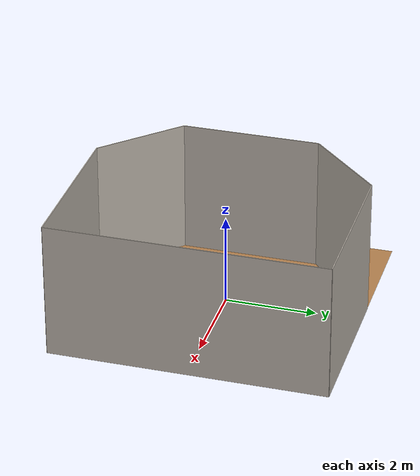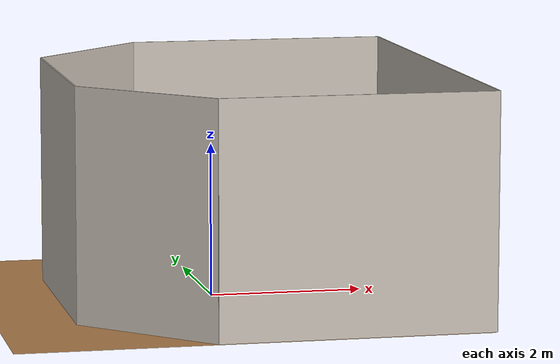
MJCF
<mujoco model="cabinet_arena">

  <asset>
    <texture builtin="gradient" height="256" rgb1=".9 .9 1." rgb2=".2 .3 .4" type="skybox" width="256"/>
    <texture file="../textures/wood-tiles.png" type="2d" name="texplane"/>
    <material name="floorplane" reflectance="0.01" shininess="0.0" specular="0.0" texrepeat="2 2" texture="texplane" texuniform="true"/>
    <!-- ceramic table texture and material-->
    <texture file="../textures/ceramic.png" type="cube" name="tex-ceramic"/>
    <material name="table_ceramic" reflectance="0.0" shininess="0.0" specular="0.2" texrepeat="1 1" texture="tex-ceramic" />
    <!-- steel legs -->
    <texture file="../textures/steel-brushed.png" type="cube" name="tex-steel-brushed"/>
    <material name="table_legs_metal" reflectance="0.8" shininess="0.8" texrepeat="1 1" texture="tex-steel-brushed" rgba="1 1 1 0.3"/>
    <material name="table_legs_metal2" reflectance="0.8" shininess="0.8" texrepeat="1 1" texture="tex-steel-brushed" rgba="1 1 1 0.3"/>

    <!-- plaster walls -->
    <texture file="../textures/cream-plaster.png" type="2d" name="tex-cream-plaster"/>
    <material name="walls_mat" reflectance="0.0" shininess="0.1" specular="0.1" texrepeat="3 3" texture="tex-cream-plaster" texuniform="true" />
    <!-- added table texture and material for domain randomization -->
    <texture  name="textable" builtin="flat" height="512" width="512" rgb1="0.5 0.5 0.5" rgb2="0.5 0.5 0.5"/>
    <material name="table_mat" texture="textable" />

    <mesh name="cabinet" file="meshes/kitchen_cabinet.stl" />

  </asset>
  <worldbody>
    <!-- Floor -->
    <geom condim="3" material="floorplane" name="floor" pos="0 0 0" size="3 3 .125" type="plane"/>
    <!-- Walls (visual only) -->
    <geom pos="-1.25 2.25 1.5" quat="0.6532815 0.6532815 0.2705981 0.2705981" size="1.06 1.5 0.01" type="box" conaffinity="0" contype="0" group="1" name="wall_leftcorner_visual" material="walls_mat"/>
    <geom pos="-1.25 -2.25 1.5" quat="0.6532815 0.6532815 -0.2705981 -0.2705981" size="1.06 1.5 0.01" type="box" conaffinity="0" contype="0" group="1" name="wall_rightcorner_visual" material="walls_mat"/>
    <geom pos="1.25 3 1.5" quat="0.7071 0.7071 0 0" size="1.75 1.5 0.01" type="box" conaffinity="0" contype="0" group="1" name="wall_left_visual" material="walls_mat"/>
    <geom pos="1.25 -3 1.5" quat="0.7071 -0.7071 0 0" size="1.75 1.5 0.01" type="box" conaffinity="0" contype="0" group="1" name="wall_right_visual" material="walls_mat"/>
    <geom pos="-2 0 1.5" quat="0.5 0.5 0.5 0.5" size="1.5 1.5 0.01" type="box" conaffinity="0" contype="0" group="1" name="wall_rear_visual" material="walls_mat"/>
    <geom pos="3 0 1.5" quat="0.5 0.5 -0.5 -0.5" size="3 1.5 0.01" type="box" conaffinity="0" contype="0" group="1" name="wall_front_visual" material="walls_mat"/>
    <!-- Table body -->
    <body name="table" pos="0 0 0.4">
      <geom pos="0 0 0" size="0.4 0.4 0.4" type="box" group="0" name="table_collision" solimp="0.9 0.95 0.001 0.5 2" solmix="10000" solref="0.001 2" priority="1"/>
      <geom pos="0 0 0" size="0.4 0.4 0.4" type="box" conaffinity="0" contype="0" group="1" name="table_visual" material="table_legs_metal"/>

      <!-- drawer used to be 0.14 in y -->
      <!-- drawer Sides (visual only) -->
      <geom pos="0.0 0.14 0.13" size="0.2 0.01 0.11" type="box" conaffinity="0" contype="0" group="1" name="drawer_visual" material="table_legs_metal2" priority="1"/>
      <geom pos="0.0 -0.14 0.13" size="0.2 0.01 0.11" type="box" conaffinity="0" contype="0" group="1" name="drawer_visual1" material="table_legs_metal" priority="1"/>
      <!-- drawer Back (visual only) -->
      <geom pos="0.19 0 0.13" size="0.01 0.14 0.11" type="box" conaffinity="0" contype="0" group="1" name="drawer_visual3" material="table_legs_metal" priority="1"/>
      <!-- drawer Front (visual only) -->
      <geom pos="-0.19 0 0.13" size="0.01 0.14 0.11" type="box" conaffinity="0" contype="0" group="1" name="drawer_visual4" material="table_legs_metal" priority="1"/>

      <!-- Cabinet Top (visual only) -->
       <!-- Cabinet Sides (visual only) -->
       <!-- Cabinet Back (visual only) -->
      <!-- Cabinet Bottom (visual only) -->

       <!-- drawer Sides (collision only) -->
      <geom condim = "3" pos="0.0 0.14 0.13" size="0.2 0.01 0.11" type="box" name="drawer_collision" solimp="0.9 0.95 0.001 0.5 2" solmix="10000" friction="0.4 0.005 0.0001" solref="0.00001 2"  priority = "3"/>
      <geom condim = "3" pos="0.0 -0.14 0.13" size="0.2 0.01 0.11" type="box" name="drawer_collision1" solimp="0.9 0.95 0.001 0.5 2" solmix="10000" friction="0.4 0.005 0.0001" solref="0.00001 2"  priority = "3"/>
      <!-- drawer Back (collision only) -->
      <geom condim = "3" pos="0.19 0 0.13" size="0.01 0.14 0.11" type="box" name="drawer_collision2" solimp="0.9 0.95 0.001 0.5 2" solmix="10000" friction="0.4 0.005 0.0001" solref="0.00001 2"  priority = "3"/>
      <!-- drawer Front (collision only) -->
      <geom condim = "3" pos="-0.19 0 0.13" size="0.01 0.14 0.11" type="box" name="drawer_collision3" solimp="0.9 0.95 0.001 0.5 2" solmix="10000" friction="0.4 0.005 0.0001" solref="0.00001 2"  priority = "3"/>
      <site pos="0 0 0.4" name="table_top" size="0.001 0.001 0.001" rgba="0 0 0 0"/>

      <!-- Cabinet Top (collision only) -->
       <!-- Cabinet Sides (collision only) -->
       <!-- Cabinet Back (collision only) -->
      <!-- Cabinet Bottom (collision only) -->

      <!-- Legs (visual only) -->
      <geom pos="0 0 0" size="0.05 0.1" type="cylinder" conaffinity="0" contype="0" group="1" name="table_leg1_visual" material="table_legs_metal"/>
      <geom pos="0 0 0" size="0.05 0.1" type="cylinder" conaffinity="0" contype="0" group="1" name="table_leg2_visual" material="table_legs_metal"/>
      <geom pos="0 0 0" size="0.05 0.1" type="cylinder" conaffinity="0" contype="0" group="1" name="table_leg3_visual" material="table_legs_metal"/>
      <geom pos="0 0 0" size="0.05 0.1" type="cylinder" conaffinity="0" contype="0" group="1" name="table_leg4_visual" material="table_legs_metal"/>
    </body>

    <light name="light1" diffuse=".8 .8 .8" dir="0 -.15 -1" directional="false" pos="1 1 4.0" specular="0.3 0.3 0.3" castshadow="false"/>
    <light name="light2" diffuse=".8 .8 .8" dir="0 -.15 -1" directional="false" pos="-3. -3. 4.0" specular="0.3 0.3 0.3" castshadow="false"/>
    <light name="undercabinetlights" diffuse=".8 .8 .8" dir=".4 0 -.6" directional="false" pos="-0. 0 1.8" specular="0.3 0.3 0.3" castshadow="true"/>
    <!-- front view -->
    <!-- bird view -->
    <!-- agent view -->
    <!-- side view -->
    <camera mode="fixed" name="sideview" pos="-0.05651774593317116 1.2761224129427358 2" quat="0.009905065491771751 0.006877963156909582 0.5912228352893879 0.806418094001364" />
    <!-- cabinet view -->
    <camera mode="fixed" name="cabinetview" pos="-0.05651774593317116 1.2761224129427358 1.8" quat="0.009905065491771751 0.006877963156909582 0.5912228352893879 0.806418094001364" />
  </worldbody>
</mujoco>
